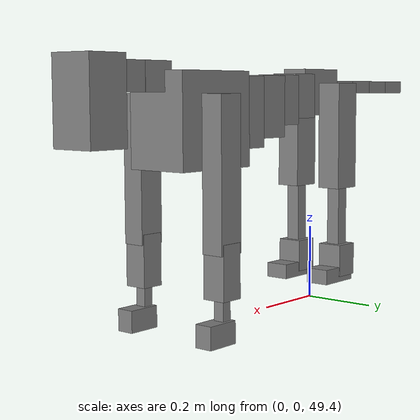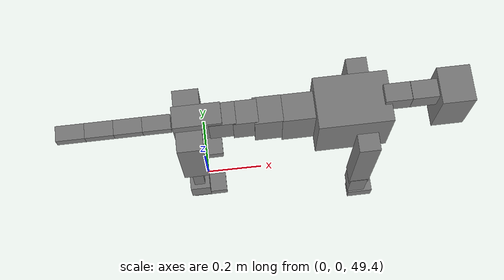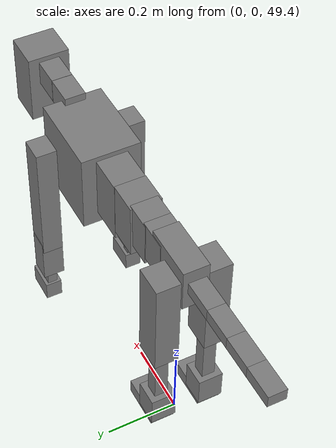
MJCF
<mujoco model="dog">

    <default>
        <joint armature="0.02" stiffness="1" damping="0.2" limited="true"/>
        <geom condim="3" friction="1 0.05 0.05" margin="0.01"/>
        <motor ctrllimited="true" ctrlrange="-1.0 1.0" forcelimited="true" gear="50"/>
    </default>

    <compiler inertiafromgeom="true" angle="radian"/>

    <option timestep="0.016" iterations="50" tolerance="1e-10" solver="Newton" jacobian="dense" cone="pyramidal"/>

    <size nconmax="20000" njmax="60000" nstack="5000000"/>
    <visual>
        <map force="0.1" zfar="30"/>
        <rgba haze="0.15 0.25 0.35 1"/>
        <quality shadowsize="2048"/>
        <global offwidth="800" offheight="800"/>
    </visual>

    <asset>
        <texture type="skybox" builtin="gradient" rgb1="0.3 0.5 0.7" rgb2="0 0 0" width="512" height="512"/>
        <texture name="texplane" type="2d" builtin="checker" rgb1=".2 .3 .4" rgb2=".1 0.15 0.2" width="512" height="512"
                 mark="cross" markrgb=".8 .8 .8"/>
        <texture name="texgeom" type="cube" builtin="flat" mark="cross" width="127" height="1278" rgb1="0.8 0.6 0.4"
                 rgb2="0.8 0.6 0.4" markrgb="1 1 1" random="0.01"/>

        <material name="matplane" reflectance="0.3" texture="texplane" texrepeat="1 1" texuniform="true"/>
        <material name="matgeom" texture="texgeom" texuniform="true" rgba="0.8 0.6 .4 1"/>
    </asset>

    <worldbody>
        <geom name="floor" pos="0 0 0" size="0 0 .25" type="plane" material="matplane" condim="3"/>

        <light directional="false" diffuse=".2 .2 .2" specular="0 0 0" pos="0 0 5" dir="0 0 -1" castshadow="false"/>
        <light mode="targetbodycom" target="torso" directional="false" diffuse=".8 .8 .8" specular="0.3 0.3 0.3"
               pos="0 0 4.0" dir="0 0 -1"/>

        <body name="root" pos="0 0 50">
            <freejoint name="root_1"/>
            <geom type="box" pos="0 0 -0.02" size="0.0774  0.0358  0.063" density="2030"/>

            <body name="spine1" pos="0.054 0 0">
                <joint name="spine1_y" axis="0 1 0" range="0 0.7" limited="true"/>
                <geom type="box" pos="0.02375 0 -0.03" size="0.04375  0.0375  0.05985" density="2030"/>

                <body name="spine2" pos="0.0612 0 0">
                    <joint name="spine2_y" axis="0 1 0" range="-0.15 0.15" limited="true"/>
                    <geom type="box" pos="0.03555  0  -0.04" size="0.04055  0.039  0.06615" density="2030"/>

                    <body name="spine3" pos="0.0730 0 0">
                        <joint name="spine3_y" axis="0 1 0" range="-0.15 0.15" limited="true"/>
                        <geom type="box" pos="0.03555  0  -0.057" size="0.04555  0.0445  0.081" density="2030"/>

                        <body name="spine4" pos="0.0780 0 0">
                            <joint name="spine4_y" axis="0 1 0" range="-0.15 0.15" limited="true"/>
                            <geom type="box" pos="0.05265  0  -0.07" size="0.05265  0.045  0.09135" density="2030"/>

                            <body name="torso" pos="0.1082 0 0">
                                <joint name="torso_y" axis="0 1 0" range="-0.15 0.15" limited="true"/>
                                <geom type="box" pos="0.11925  0  -0.085" size="0.11925  0.085  0.11745"
                                      density="2030"/>

                                <body name="neck1" pos="0.2160  0   0.0180">
                                    <joint name="neck1_y" axis="0 1 0" range="-1.2  -1" limited="true"/>
                                    <geom type="box" pos="0.0423  0  0" size="0.0423  0.03  0.036" density="2325"/>

                                    <body name="neck2" pos="0.0853  0  0">
                                        <joint name="neck2_y" axis="0 1 0" range="0.1  0" limited="true"/>
                                        <geom type="box" pos="0.0423  0  0" size="0.0423  0.03  0.036" density="2325"/>

                                        <body name="head" pos="0.0853  0  0">
                                            <joint name="head_y" axis="0 1 0" range="-0.3  -0.2" limited="true"/>
                                            <geom type="box" pos="0.0531  0  -0.055" size="0.0531  0.06  0.1044"
                                                  density="4030"/>

                                        </body>
                                    </body>
                                </body>

                                <body name="front_shoulder" pos="0.156  0   -0.0480">
                                    <joint name="front_shoulder_y" axis="0 1 0" range="-1 1.5" limited="true"/>
                                    <geom type="box" pos="0 0.13 -0.1603" size="0.0344  0.0294  0.1870" density="1158"/>
                                    <geom type="box" pos="0 -0.13 -0.1603" size="0.0344  0.0294  0.1870"
                                          density="1158"/>

                                    <body name="front_elbow" pos="0  0  -0.3206">
                                        <joint name="front_elbow_y" axis="0 1 0" range="-2 0" limited="true"/>
                                        <geom type="box" pos="0 0.13 -0.0672" size="0.0301  0.0308  0.0672"
                                              density="1081"/>
                                        <geom type="box" pos="0 -0.13 -0.0672" size="0.0301  0.0308  0.0672"
                                              density="1081"/>

                                        <body name="front_wrist" pos="0  0  -0.1344">
                                            <joint name="front_wrist_y" axis="0 1 0" range="-0.2 0" limited="true"/>
                                            <geom type="box" pos="0 0.13 -0.0330" size="0.0129  0.0143  0.0462"
                                                  density="1664"/>
                                            <geom type="box" pos="0 -0.13 -0.0330" size="0.0129  0.0143  0.0462"
                                                  density="1664"/>

                                            <body name="front_finger_end" pos="0  0  -0.0660">
                                                <joint name="front_finger_y" axis="0 1 0" range="-0.4 1"
                                                       limited="true"/>
                                                <geom type="box" pos="0.0238  0.13  -0.0132"
                                                      size="0.0436  0.0238  0.0282" density="1515"/>
                                                <geom type="box" pos="0.0238  -0.13  -0.0132"
                                                      size="0.0436  0.0238  0.0282" density="1515"/>

                                            </body>

                                        </body>
                                    </body>
                                </body>

                            </body>
                        </body>
                    </body>
                </body>
            </body>

            <body name="back_hip" pos="-0.03 0 -0.018">
                <joint name="back_hip_y" axis="0 1 0" range="-1.5 0.3" limited="true"/>
                <geom type="box" pos="0 0.07 -0.1222" size="0.0424  0.0332  0.1450" density="1154"/>
                <geom type="box" pos="0 -0.07 -0.1222" size="0.0424  0.0332  0.1450" density="1154"/>

                <body name="back_knee" pos="0  0  -0.2445">
                    <joint name="back_knee_y" axis="0 1 0" range="0 2.8" limited="true"/>
                    <geom type="box" pos="0 0.07 -0.0962" size="0.0187  0.0185  0.1117" density="1227"/>
                    <geom type="box" pos="0 -0.07 -0.0962" size="0.0187  0.0185  0.1117" density="1227"/>

                    <body name="back_ankle" pos="0  0  -0.1923">
                        <joint name="back_ankle_y" axis="0 1 0" range="-2.2 0" limited="true"/>
                        <geom type="box" pos="0 0.07 -0.0327" size="0.0348  0.0348  0.0440" density="1284"/>
                        <geom type="box" pos="0 -0.07 -0.0327" size="0.0348  0.0348  0.0440" density="1284"/>

                        <body name="back_toe_end" pos="0  0  -0.0655">
                            <joint name="back_toe_y" axis="0 1 0" range="-0.4 1" limited="true"/>
                            <geom type="box" pos="0.0330  0.07  -0.0053" size="0.0606  0.0330  0.0203" density="1515"/>
                            <geom type="box" pos="0.0330  -0.07  -0.0053" size="0.0606  0.0330  0.0203" density="1515"/>

                        </body>
                    </body>
                </body>
            </body>

            <body name="tail1" pos="-0.074 0 -0.006">
                <joint name="tail1_y" axis="0 1 0" range="-0.2 0.2" limited="true"/>
                <geom type="box" pos="-0.0536  0  0" size="0.045  0.025  0.0175" density="1587"/>

                <body name="tail2" pos="-0.09 0 0">
                    <joint name="tail2_y" axis="0 1 0" range="-0.2 0.2" limited="true"/>
                    <geom type="box" pos="-0.0536  0  0" size="0.045  0.025  0.0175" density="1587"/>

                    <body name="tail3" pos="-0.09 0 0">
                        <joint name="tail3_y" axis="0 1 0" range="-0.2 0.2" limited="true"/>
                        <geom type="box" pos="-0.0536  0  0" size="0.045  0.025  0.0175" density="1587"/>

                        <body name="tail4" pos="-0.09 0 0">
                            <joint name="tail4_y" axis="0 1 0" range="-0.2 0.2" limited="true"/>
                            <geom type="box" pos="-0.0536  0  0" size="0.045  0.025  0.0175" density="1587"/>

                        </body>
                    </body>
                </body>
            </body>
        </body>
    </worldbody>

    <actuator>
        <motor joint="spine1_y" forcerange="-150 150     "/>
        <motor joint="spine2_y" forcerange="-150 150     "/>
        <motor joint="spine3_y" forcerange="-150 150     "/>
        <motor joint="spine4_y" forcerange="-150 150     "/>
        <motor joint="torso_y" forcerange="-150 150     "/>
        <motor joint="neck1_y" forcerange="-100 100       "/>
        <motor joint="neck2_y" forcerange="-100 100       "/>
        <motor joint="head_y" forcerange="-150 150       "/>
        <motor joint="front_shoulder_y" forcerange="-150.67 145.15"/>
        <motor joint="front_elbow_y" forcerange="-147.60 176.53"/>
        <motor joint="front_wrist_y" forcerange="-61.23 53.28"/>
        <motor joint="front_finger_y" forcerange="-32.95 53.94"/>
        <motor joint="back_hip_y" forcerange="-352.64 290.56"/>
        <motor joint="back_knee_y" forcerange="-236.61 231.79"/>
        <motor joint="back_angle_y" forcerange="-246.72 209.51"/>
        <motor joint="back_toe_y" forcerange="-115.50 68.73"/>
        <motor joint="tail1_y" forcerange="-50 50     "/>
        <motor joint="tail2_y" forcerange="-50 50     "/>
        <motor joint="tail3_y" forcerange="-50 50     "/>
        <motor joint="tail4_y" forcerange="-50 50     "/>
    </actuator>
</mujoco>
